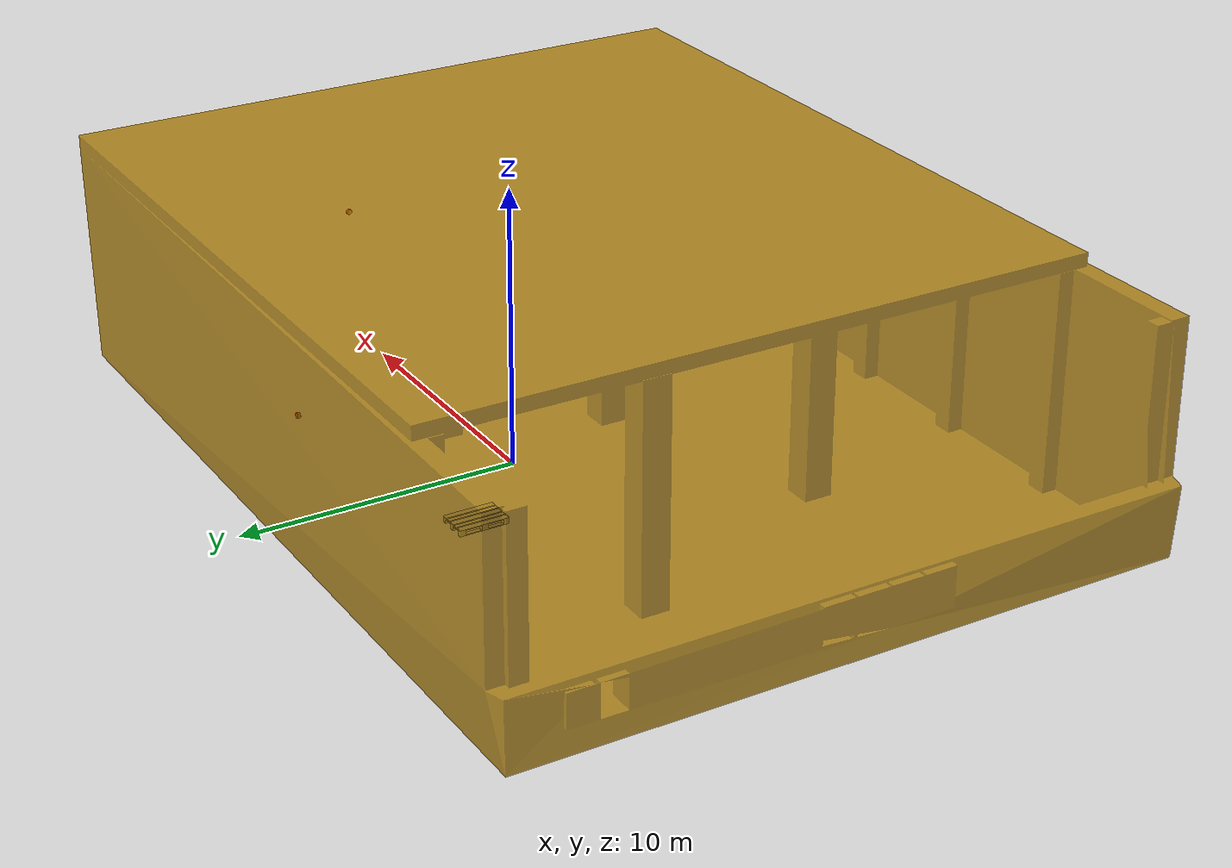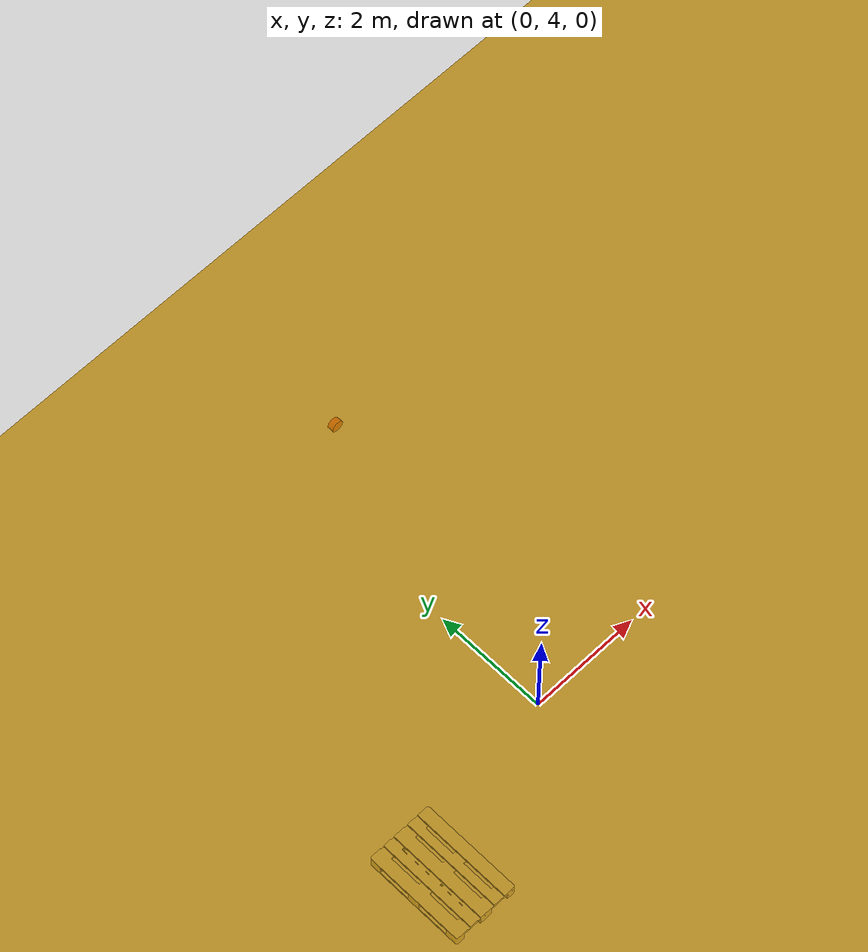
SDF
<sdf version="1.5">
 <world name="visualize_lidar_world">
  <physics name="1ms" type="ignored">
   <max_step_size>0.01</max_step_size>
   <real_time_factor>1.0</real_time_factor>
  </physics>
  <light type="directional" name="sun">
   <cast_shadows>false</cast_shadows>
   <pose>0 0 80 0 0 0</pose>
   <diffuse>0.8 0.8 0.8 1</diffuse>
   <specular>0.2 0.2 0.2 1</specular>
   <attenuation>
    <range>1000</range>
    <constant>0.9</constant>
    <linear>0.01</linear>
    <quadratic>0.001</quadratic>
   </attenuation>
   <direction>-0.5 0.1 -0.9</direction>
  </light>
  <include><uri>model://lab_131</uri></include>
  <include><uri>model://markers</uri></include>
  <include><pose>-3 3 0.2 0 0 0</pose><uri>model://euro_pallet</uri></include>
 </world>
</sdf>

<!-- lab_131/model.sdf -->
<sdf version="1.5">
  <model name="lab_131">
    <pose>0 0 0 0 0 0</pose>
      <static>true</static>
      <link name="lab">
        <collision name="collision">
          <geometry>
            <mesh>
              <uri>meshes/labpillars.obj</uri>
            </mesh>
          </geometry>
        </collision>
        <visual name="visual">
          <geometry>
            <mesh>
              <uri>meshes/labpillars.obj</uri>
            </mesh>
          </geometry>
          <material>
            <ambient>0.7 0.5 0 0.8</ambient>
            <diffuse>0.7 0.5 0 0.8</diffuse>
            <specular>1 1 1 0.8</specular>
          </material>
        </visual>
      </link>
    </model>
</sdf>

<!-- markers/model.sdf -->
<sdf version="1.5">
  <model name="markers">
    <static>true</static>
    <link name="marker_1">
      <pose>-0.35 7.9 4 0 1.5707 1.5707</pose>
        <collision name="collision">
          <geometry>
            <cylinder>
              <length>0.1</length>
              <radius>0.1</radius>
            </cylinder>
          </geometry>
        </collision>
        <visual name="visual">
          <material>
              <ambient>1 0 0 1</ambient>
              <diffuse>1 0 0 1</diffuse>
              <specular>1 1 1 1</specular>
          </material>
          <geometry>
            <cylinder>
              <length>0.1</length>
              <radius>0.1</radius>
            </cylinder>
          </geometry>
        </visual>
      </link>

      <link name="marker_2">
      <pose>14.25 -0.8 4 0 1.5707 0</pose>
        <collision name="collision">
          <geometry>
            <cylinder>
              <length>0.1</length>
              <radius>0.1</radius>
            </cylinder>
          </geometry>
        </collision>
        <visual name="visual">
          <material>
              <ambient>1 0 0 1</ambient>
              <diffuse>1 0 0 1</diffuse>
              <specular>1 1 1 1</specular>
          </material>
          <geometry>
            <cylinder>
              <length>0.1</length>
              <radius>0.1</radius>
            </cylinder>
          </geometry>
        </visual>
      </link>

      <plugin filename="libLocalPosePublisher.so" name="ignition::gazebo::systems::LocalPosePublisher">
        <set_subscriber_topic_name>/marker_id</set_subscriber_topic_name>
      </plugin>
    </model>
</sdf>

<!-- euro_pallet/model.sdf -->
<sdf version="1.5">
  <model name="euro_pallet">
    <pose>0 0 0.2 0 0 0</pose>
      <static>true</static>
      <link name="euro_pallet">
        <inertial>
          <mass>20.0</mass>
          <inertia>
            <ixx>2.43</ixx>
            <ixy>0</ixy>
            <ixz>0</ixz>
            <iyy>1.10</iyy>
            <iyz>0</iyz>
            <izz>3.47</izz>
          </inertia>
        </inertial>
        <collision name="collision">
          <geometry>
            <mesh>
              <uri>meshes/pallet.dae</uri>
              <scale>0.15 0.15 0.15</scale>
            </mesh>
          </geometry>
        </collision>
        <visual name="visual">
          <geometry>
            <mesh>
              <uri>meshes/pallet.dae</uri>
              <scale>0.15 0.15 0.15</scale>
            </mesh>
          </geometry>
        </visual>
      </link>
    </model>
</sdf>
